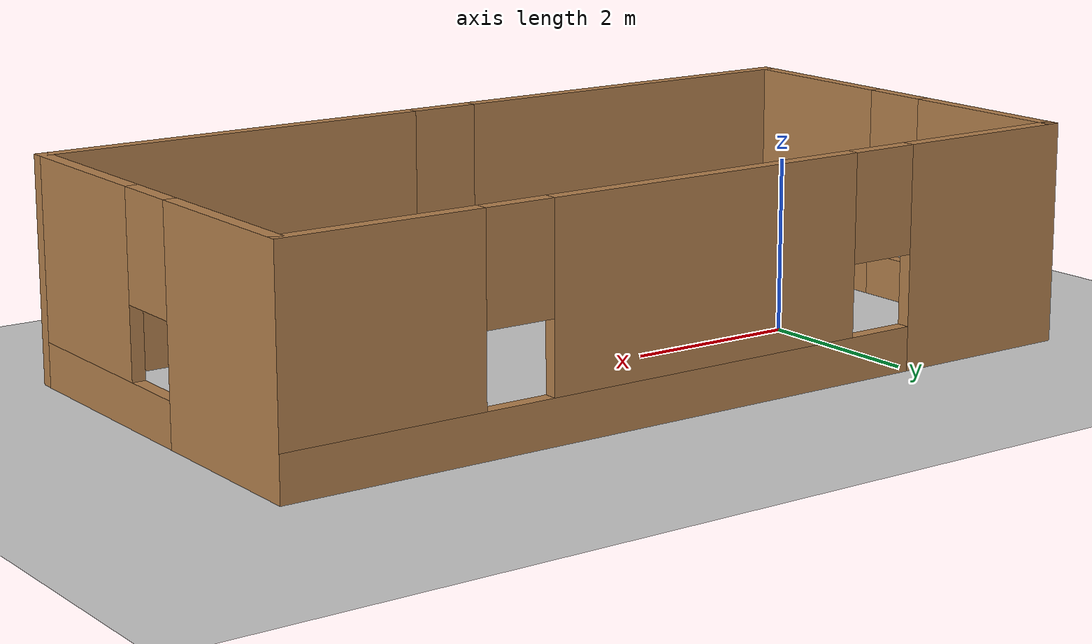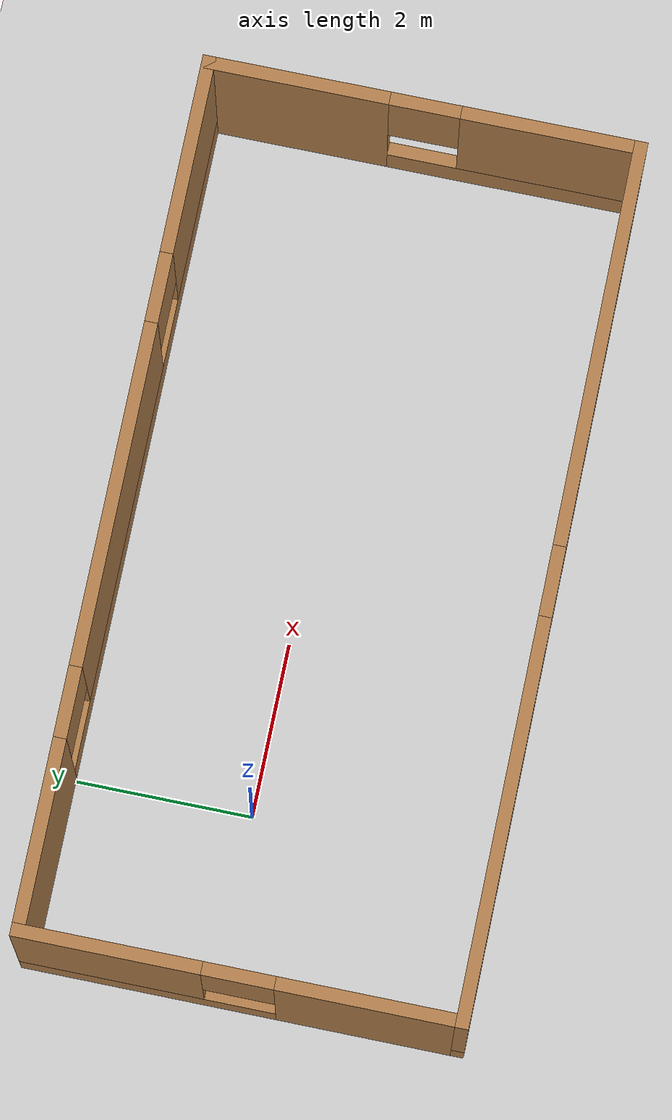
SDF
<sdf version="1.6">
 <world name="default">
  <light name="sun" type="directional">
   <pose>0 0 10 0 -0 0</pose>
   <diffuse>0.8 0.8 0.8 1</diffuse>
   <specular>0.2 0.2 0.2 1</specular>
   <attenuation>
    <range>1000</range>
    <constant>0.9</constant>
    <linear>0.01</linear>
    <quadratic>0.001</quadratic>
   </attenuation>
   <direction>-0.5 0.1 -0.9</direction>
  </light>
  <model name="ground_plane">
   <static>1</static>
   <link name="link">
    <collision name="collision">
     <geometry><plane><normal>0 0 1</normal><size>100 100</size></plane></geometry>
     <surface><friction><ode><mu>100</mu><mu2>50</mu2></ode></friction></surface>
    </collision>
    <visual name="visual">
     <cast_shadows>0</cast_shadows>
     <geometry><plane><normal>0 0 1</normal><size>100 100</size></plane></geometry>
     <material>
      <script><uri>file://media/materials/scripts/gazebo.material</uri><name>Gazebo/Grey</name></script>
     </material>
    </visual>
   </link>
  </model>
  <gravity>0 0 -9.8</gravity>
  <magnetic_field>6e-06 2.3e-05 -4.2e-05</magnetic_field>
  <atmosphere type="adiabatic"/>
  <physics name="default_physics" default="0" type="ode">
   <max_step_size>0.001</max_step_size>
   <real_time_factor>1</real_time_factor>
   <real_time_update_rate>1000</real_time_update_rate>
  </physics>
  <scene><ambient>0.4 0.4 0.4 1</ambient><background>0.7 0.7 0.7 1</background><shadows>1</shadows></scene>
  <spherical_coordinates>
   <surface_model>EARTH_WGS84</surface_model>
   <latitude_deg>0</latitude_deg>
   <longitude_deg>0</longitude_deg>
   <elevation>0</elevation>
   <heading_deg>0</heading_deg>
  </spherical_coordinates>
  <model name="lab_space">
   <pose>2.8345 -0.334833 0 0 -0 0</pose>
   <link name="Wall_16">
    <pose>0 2.425 0 0 -0 0</pose>
    <visual name="Wall_16_Visual_0">
     <pose>-3.89702 0 1.25 0 -0 0</pose>
     <geometry><box><size>2.20596 0.15 2.5</size></box></geometry>
     <material>
      <script><uri>file://media/materials/scripts/gazebo.material</uri><name>Gazebo/Wood</name></script>
      <ambient>1 1 1 1</ambient>
     </material>
    </visual>
    <collision name="Wall_16_Collision_0">
     <geometry><box><size>2.20596 0.15 2.5</size></box></geometry>
     <pose>-3.89702 0 1.25 0 -0 0</pose>
    </collision>
    <visual name="Wall_16_Visual_1">
     <pose>1.10298 0 0.25 0 -0 0</pose>
     <geometry><box><size>7.79404 0.15 0.5</size></box></geometry>
     <material>
      <script><uri>file://media/materials/scripts/gazebo.material</uri><name>Gazebo/Wood</name></script>
      <ambient>1 1 1 1</ambient>
     </material>
    </visual>
    <collision name="Wall_16_Collision_1">
     <geometry><box><size>7.79404 0.15 0.5</size></box></geometry>
     <pose>1.10298 0 0.25 0 -0 0</pose>
    </collision>
    <visual name="Wall_16_Visual_2">
     <pose>-0.042285 0 1.5 0 -0 0</pose>
     <geometry><box><size>3.9035 0.15 2</size></box></geometry>
     <material>
      <script><uri>file://media/materials/scripts/gazebo.material</uri><name>Gazebo/Wood</name></script>
      <ambient>1 1 1 1</ambient>
     </material>
    </visual>
    <collision name="Wall_16_Collision_2">
     <geometry><box><size>3.9035 0.15 2</size></box></geometry>
     <pose>-0.042285 0 1.5 0 -0 0</pose>
    </collision>
    <visual name="Wall_16_Visual_3">
     <pose>3.85473 0 1.5 0 -0 0</pose>
     <geometry><box><size>2.29054 0.15 2</size></box></geometry>
     <material>
      <script><uri>file://media/materials/scripts/gazebo.material</uri><name>Gazebo/Wood</name></script>
      <ambient>1 1 1 1</ambient>
     </material>
    </visual>
    <collision name="Wall_16_Collision_3">
     <geometry><box><size>2.29054 0.15 2</size></box></geometry>
     <pose>3.85473 0 1.5 0 -0 0</pose>
    </collision>
    <visual name="Wall_16_Visual_4">
     <pose>-2.39404 0 1.9 0 -0 0</pose>
     <geometry><box><size>0.8 0.15 1.2</size></box></geometry>
     <material>
      <script><uri>file://media/materials/scripts/gazebo.material</uri><name>Gazebo/Wood</name></script>
      <ambient>1 1 1 1</ambient>
     </material>
    </visual>
    <collision name="Wall_16_Collision_4">
     <geometry><box><size>0.8 0.15 1.2</size></box></geometry>
     <pose>-2.39404 0 1.9 0 -0 0</pose>
    </collision>
    <visual name="Wall_16_Visual_5">
     <pose>2.30946 0 1.9 0 -0 0</pose>
     <geometry><box><size>0.8 0.15 1.2</size></box></geometry>
     <material>
      <script><uri>file://media/materials/scripts/gazebo.material</uri><name>Gazebo/Wood</name></script>
      <ambient>1 1 1 1</ambient>
     </material>
    </visual>
    <collision name="Wall_16_Collision_5">
     <geometry><box><size>0.8 0.15 1.2</size></box></geometry>
     <pose>2.30946 0 1.9 0 -0 0</pose>
    </collision>
   </link>
   <link name="Wall_17">
    <pose>4.925 0 0 0 0 -1.5708</pose>
    <visual name="Wall_17_Visual_0">
     <pose>-1.44108 0 1.25 0 -0 0</pose>
     <geometry><box><size>2.11783 0.15 2.5</size></box></geometry>
     <material>
      <script><uri>file://media/materials/scripts/gazebo.material</uri><name>Gazebo/Wood</name></script>
      <ambient>1 1 1 1</ambient>
     </material>
    </visual>
    <collision name="Wall_17_Collision_0">
     <geometry><box><size>2.11783 0.15 2.5</size></box></geometry>
     <pose>-1.44108 0 1.25 0 -0 0</pose>
    </collision>
    <visual name="Wall_17_Visual_1">
     <pose>1.05892 0 0.25 0 -0 0</pose>
     <geometry><box><size>2.88217 0.15 0.5</size></box></geometry>
     <material>
      <script><uri>file://media/materials/scripts/gazebo.material</uri><name>Gazebo/Wood</name></script>
      <ambient>1 1 1 1</ambient>
     </material>
    </visual>
    <collision name="Wall_17_Collision_1">
     <geometry><box><size>2.88217 0.15 0.5</size></box></geometry>
     <pose>1.05892 0 0.25 0 -0 0</pose>
    </collision>
    <visual name="Wall_17_Visual_2">
     <pose>1.45892 0 1.5 0 -0 0</pose>
     <geometry><box><size>2.08217 0.15 2</size></box></geometry>
     <material>
      <script><uri>file://media/materials/scripts/gazebo.material</uri><name>Gazebo/Wood</name></script>
      <ambient>1 1 1 1</ambient>
     </material>
    </visual>
    <collision name="Wall_17_Collision_2">
     <geometry><box><size>2.08217 0.15 2</size></box></geometry>
     <pose>1.45892 0 1.5 0 -0 0</pose>
    </collision>
    <visual name="Wall_17_Visual_3">
     <pose>0.017834 0 1.9 0 -0 0</pose>
     <geometry><box><size>0.8 0.15 1.2</size></box></geometry>
     <material>
      <script><uri>file://media/materials/scripts/gazebo.material</uri><name>Gazebo/Wood</name></script>
      <ambient>1 1 1 1</ambient>
     </material>
    </visual>
    <collision name="Wall_17_Collision_3">
     <geometry><box><size>0.8 0.15 1.2</size></box></geometry>
     <pose>0.017834 0 1.9 0 -0 0</pose>
    </collision>
   </link>
   <link name="Wall_18">
    <pose>0 -2.425 0 0 -0 3.14159</pose>
    <visual name="Wall_18_Visual_0">
     <pose>-2.68173 0 1.25 0 -0 0</pose>
     <geometry><box><size>4.63654 0.15 2.5</size></box></geometry>
     <material>
      <script><uri>file://media/materials/scripts/gazebo.material</uri><name>Gazebo/Wood</name></script>
      <ambient>1 1 1 1</ambient>
     </material>
    </visual>
    <collision name="Wall_18_Collision_0">
     <geometry><box><size>4.63654 0.15 2.5</size></box></geometry>
     <pose>-2.68173 0 1.25 0 -0 0</pose>
    </collision>
    <visual name="Wall_18_Visual_1">
     <pose>2.31827 0 0.25 0 -0 0</pose>
     <geometry><box><size>5.36346 0.15 0.5</size></box></geometry>
     <material>
      <script><uri>file://media/materials/scripts/gazebo.material</uri><name>Gazebo/Wood</name></script>
      <ambient>1 1 1 1</ambient>
     </material>
    </visual>
    <collision name="Wall_18_Collision_1">
     <geometry><box><size>5.36346 0.15 0.5</size></box></geometry>
     <pose>2.31827 0 0.25 0 -0 0</pose>
    </collision>
    <visual name="Wall_18_Visual_2">
     <pose>2.71827 0 1.5 0 -0 0</pose>
     <geometry><box><size>4.56346 0.15 2</size></box></geometry>
     <material>
      <script><uri>file://media/materials/scripts/gazebo.material</uri><name>Gazebo/Wood</name></script>
      <ambient>1 1 1 1</ambient>
     </material>
    </visual>
    <collision name="Wall_18_Collision_2">
     <geometry><box><size>4.56346 0.15 2</size></box></geometry>
     <pose>2.71827 0 1.5 0 -0 0</pose>
    </collision>
    <visual name="Wall_18_Visual_3">
     <pose>0.036535 0 1.9 0 -0 0</pose>
     <geometry><box><size>0.8 0.15 1.2</size></box></geometry>
     <material>
      <script><uri>file://media/materials/scripts/gazebo.material</uri><name>Gazebo/Wood</name></script>
      <ambient>1 1 1 1</ambient>
     </material>
    </visual>
    <collision name="Wall_18_Collision_3">
     <geometry><box><size>0.8 0.15 1.2</size></box></geometry>
     <pose>0.036535 0 1.9 0 -0 0</pose>
    </collision>
   </link>
   <link name="Wall_19">
    <pose>-4.925 0 0 0 -0 1.5708</pose>
    <visual name="Wall_19_Visual_0">
     <pose>-1.44167 0 1.25 0 -0 0</pose>
     <geometry><box><size>2.11667 0.15 2.5</size></box></geometry>
     <material>
      <script><uri>file://media/materials/scripts/gazebo.material</uri><name>Gazebo/Wood</name></script>
      <ambient>1 1 1 1</ambient>
     </material>
    </visual>
    <collision name="Wall_19_Collision_0">
     <geometry><box><size>2.11667 0.15 2.5</size></box></geometry>
     <pose>-1.44167 0 1.25 0 -0 0</pose>
    </collision>
    <visual name="Wall_19_Visual_1">
     <pose>1.05833 0 0.25 0 -0 0</pose>
     <geometry><box><size>2.88333 0.15 0.5</size></box></geometry>
     <material>
      <script><uri>file://media/materials/scripts/gazebo.material</uri><name>Gazebo/Wood</name></script>
      <ambient>1 1 1 1</ambient>
     </material>
    </visual>
    <collision name="Wall_19_Collision_1">
     <geometry><box><size>2.88333 0.15 0.5</size></box></geometry>
     <pose>1.05833 0 0.25 0 -0 0</pose>
    </collision>
    <visual name="Wall_19_Visual_2">
     <pose>1.45833 0 1.5 0 -0 0</pose>
     <geometry><box><size>2.08333 0.15 2</size></box></geometry>
     <material>
      <script><uri>file://media/materials/scripts/gazebo.material</uri><name>Gazebo/Wood</name></script>
      <ambient>1 1 1 1</ambient>
     </material>
    </visual>
    <collision name="Wall_19_Collision_2">
     <geometry><box><size>2.08333 0.15 2</size></box></geometry>
     <pose>1.45833 0 1.5 0 -0 0</pose>
    </collision>
    <visual name="Wall_19_Visual_3">
     <pose>0.016666 0 1.9 0 -0 0</pose>
     <geometry><box><size>0.8 0.15 1.2</size></box></geometry>
     <material>
      <script><uri>file://media/materials/scripts/gazebo.material</uri><name>Gazebo/Wood</name></script>
      <ambient>1 1 1 1</ambient>
     </material>
    </visual>
    <collision name="Wall_19_Collision_3">
     <geometry><box><size>0.8 0.15 1.2</size></box></geometry>
     <pose>0.016666 0 1.9 0 -0 0</pose>
    </collision>
   </link>
   <static>1</static>
  </model>
  <model name="human_2_collision_model">
   <pose>0 0 -100 0 0 0</pose>
   <static>true</static>
   <link name="link">
    <collision name="link">
     <pose>0 -0.18 0.05 0 -1.5707963267948966 0</pose>
     <geometry><box><size>0.44 1.62 0.60</size></box></geometry>
    </collision>
   </link>
  </model>
 </world>
</sdf>
